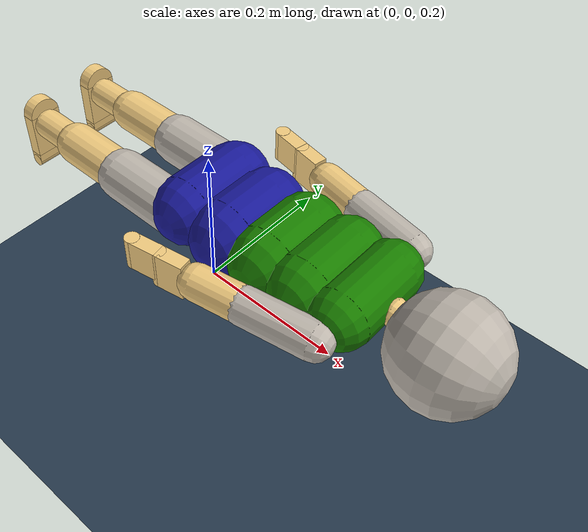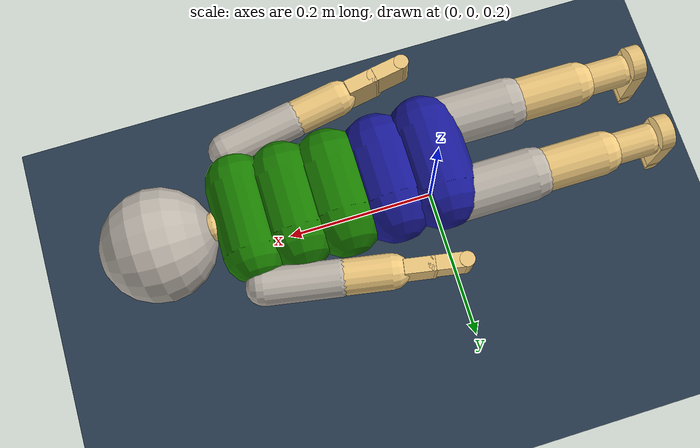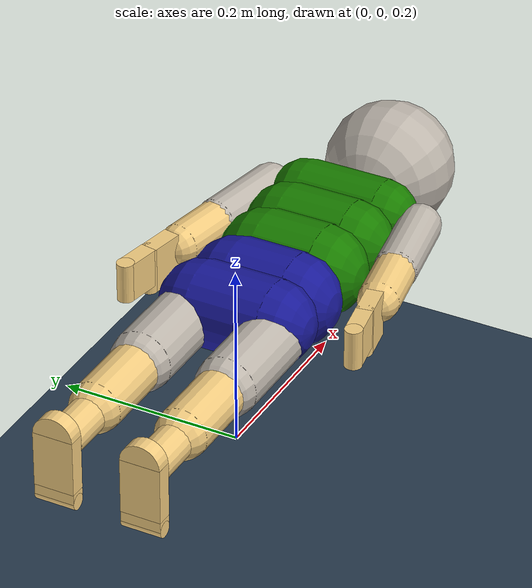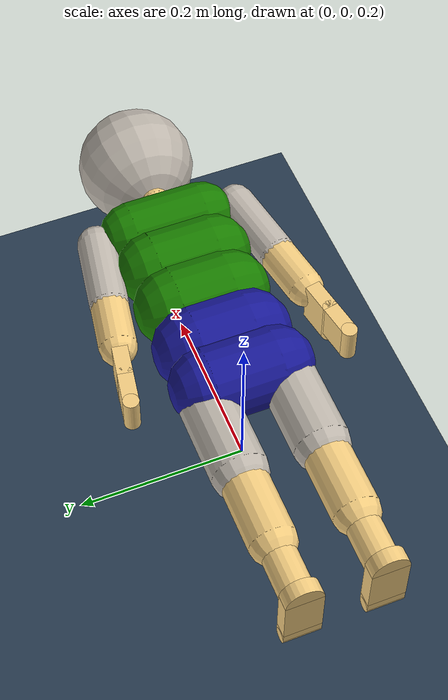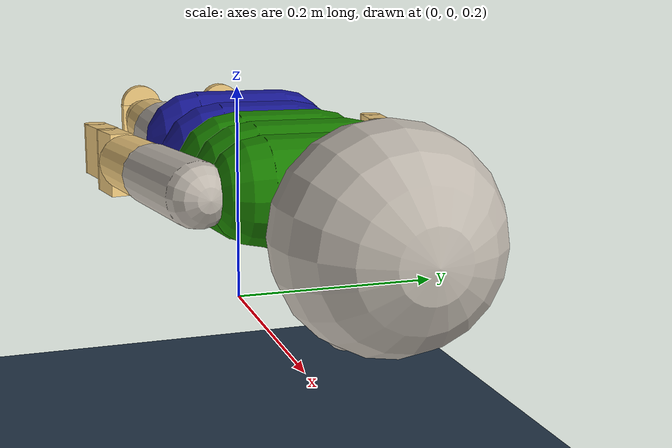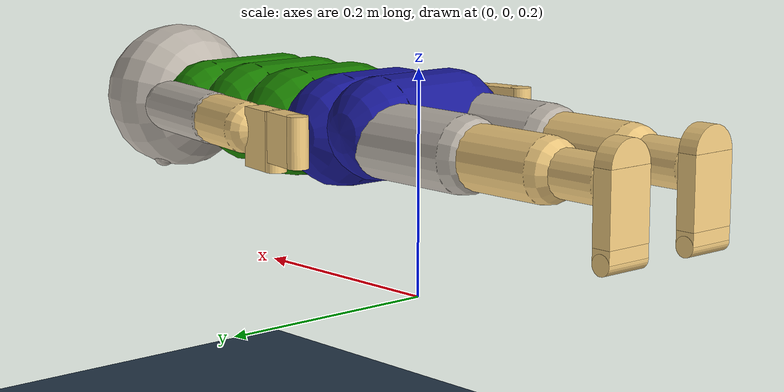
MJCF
<mujoco model="MIMo">

    <compiler inertiafromgeom="true" angle="degree"/>
    <option timestep="0.005" iterations="50" tolerance="1e-10" solver="Newton" jacobian="dense" cone="elliptic" impratio="1.0"/>
    <size nconmax="1000" njmax="5000" nstack="10000000" nuser_cam="3"/>

    <visual>
        <map force="0.1" zfar="30" znear="0.005"/>
        <rgba haze="0.15 0.25 0.35 1"/>
        <quality shadowsize="4096"/>
        <global offwidth="800" offheight="800"/>
    </visual>

    <asset>

        <texture type="skybox" builtin="gradient" rgb1="0.3 0.5 0.7" rgb2="0 0 0" width="512" height="512"/>

        <texture name="texplane" type="2d" builtin="checker" rgb1=".2 .3 .4" rgb2=".1 0.15 0.2" width="512" height="512" mark="cross" markrgb=".8 .8 .8"/>
        <material name="matplane" reflectance="0.3" texture="texplane" texrepeat="1 1" texuniform="true"/>

        <material name="orange" rgba="0.9 0.4 0 1" specular=".2" shininess=".8"/>

    </asset>

	<size nuser_actuator="3" />

	<default>
		<default class="mimo">
        	<joint limited="true" damping=".1" stiffness=".1" armature="0.001" solimplimit="0.98 0.99 0.001 .5 1" solreflimit="0.02 1" />
        	<geom condim="3" material="skin" friction="1 0.005 0.0002" solimp="0.95 0.99 0.001 0.5 1" solref="0.005 1" />
        	<motor ctrlrange="-1 1" ctrllimited="true" forcelimited="true" />
		</default>
    </default>

    <asset>

		<texture name="tex_head_default" type="cube" fileright="tex/head_front.png" fileleft="tex/head_back.png" fileup="tex/head_left.png" filedown="tex/head_right.png" filefront="tex/head_top.png" rgb1="0.95 .8 .5" />
		<texture name="tex_head_happy" type="cube" fileright="tex/head_front_happy.png" fileleft="tex/head_back.png" fileup="tex/head_left.png" filedown="tex/head_right.png" filefront="tex/head_top.png" rgb1="0.95 .8 .5" />
		<texture name="tex_head_sad" type="cube" fileright="tex/head_front_sad.png" fileleft="tex/head_back.png" fileup="tex/head_left.png" filedown="tex/head_right.png" filefront="tex/head_top.png" rgb1="0.95 .8 .5" />
		<texture name="tex_head_surprised" type="cube" fileright="tex/head_front_surprised.png" fileleft="tex/head_back.png" fileup="tex/head_left.png" filedown="tex/head_right.png" filefront="tex/head_top.png" rgb1="0.95 .8 .5" />
		<texture name="tex_head_angry" type="cube" fileright="tex/head_front_angry.png" fileleft="tex/head_back.png" fileup="tex/head_left.png" filedown="tex/head_right.png" filefront="tex/head_top.png" rgb1="0.95 .8 .5" />
		<texture name="tex_head_disgusted" type="cube" fileright="tex/head_front_disgusted.png" fileleft="tex/head_back.png" fileup="tex/head_left.png" filedown="tex/head_right.png" filefront="tex/head_top.png" rgb1="0.95 .8 .5" />
		<texture name="tex_head_scared" type="cube" fileright="tex/head_front_scared.png" fileleft="tex/head_back.png" fileup="tex/head_left.png" filedown="tex/head_right.png" filefront="tex/head_top.png" rgb1="0.95 .8 .5" />
		<texture name="tex_top_sleeve" type="cube" fileright="tex/sleeve_right.png" fileleft="tex/sleeve_left.png" fileup="tex/sleeve_up.png" filedown="tex/sleeve_down.png" filefront="tex/sleeve_front.png" fileback="tex/sleeve_back.png" rgb1="0.95 .8 .5" />
		<texture name="tex_pants_leg" type="cube" fileright="tex/leg_right.png" fileleft="tex/leg_left.png" fileup="tex/leg_up.png" filedown="tex/leg_down.png" filefront="tex/leg_front.png" fileback="tex/leg_back.png" rgb1="0.95 .8 .5" />
		<texture name="tex_eye_left" type="cube" fileright="tex/eye_pupil_left.png" rgb1="1 1 1" />
		<texture name="tex_eye_right" type="cube" fileright="tex/eye_pupil_right.png" rgb1="1 1 1" />

		<material name="skin" rgba="0.95 0.8 0.5 1" specular=".15" shininess=".7" />
		<material name="buttons" rgba=".05 .05 .05 1" specular=".9" shininess=".9" />
		<material name="head" texture="tex_head_default" texuniform="true" specular=".0" shininess=".0" />
		<material name="top_up" rgba=".1 .5 0.0 1" specular=".0" shininess=".0" />
		<material name="top_middle" rgba=".1 .5 0.0 1" specular=".0" shininess=".0" />
		<material name="top_down" rgba=".1 .5 0.0 1" specular=".0" shininess=".0" />
		<material name="top_sleeve" texture="tex_top_sleeve" texuniform="true" specular=".0" shininess=".0" />
		<material name="pants_up" rgba="0.1 0.1 0.6 1" specular=".0" shininess=".0" />
		<material name="pants_down" rgba="0.1 0.1 0.6 1" specular=".0" shininess=".0" />
		<material name="pants_leg" texture="tex_pants_leg" texuniform="true" specular=".0" shininess=".0" />
		<material name="eye_left" texture="tex_eye_left" texuniform="true" specular=".0" shininess=".0" />
		<material name="eye_right" texture="tex_eye_right" texuniform="true" specular=".0" shininess=".0" />

    </asset>

	<contact>
		<pair geom1="lb" geom2="ub1" condim="1" />
		<exclude body1="left_eye" body2="upper_body" />
		<exclude body1="right_eye" body2="upper_body" />
	</contact>

	<tendon>
		<fixed class="mimo" name="hip_bend" limited="true" range="-.01 .01">
			<joint joint="robot:hip_bend1" coef="1" />
			<joint joint="robot:hip_bend2" coef="-1" />
		</fixed>
		<fixed class="mimo" name="hip_rotation" limited="true" range="-.01 .01">
			<joint joint="robot:hip_rot1" coef="1" />
			<joint joint="robot:hip_rot2" coef="-1" />
		</fixed>
		<fixed class="mimo" name="hip_lean" limited="true" range="-.01 .01">
			<joint joint="robot:hip_lean1" coef="1" />
			<joint joint="robot:hip_lean2" coef="-.5" />
		</fixed>
		<fixed class="mimo" name="head_limits1" limited="true" range="-2.1 2.1">
			<joint joint="robot:head_swivel" coef="1" />
			<joint joint="robot:head_tilt_side" coef="1" />
		</fixed>
		<fixed class="mimo" name="head_limits2" limited="true" range="-2.1 2.1">
			<joint joint="robot:head_tilt" coef="1" />
			<joint joint="robot:head_tilt_side" coef="1" />
		</fixed>
		<fixed class="mimo" name="head_limits3" limited="true" range="-2.1 2.1">
			<joint joint="robot:head_swivel" coef="1" />
			<joint joint="robot:head_tilt" coef="1" />
		</fixed>
		<fixed class="mimo" name="head_limits1_sym" limited="true" range="-2.1 2.1">
			<joint joint="robot:head_swivel" coef="1" />
			<joint joint="robot:head_tilt_side" coef="-1" />
		</fixed>
		<fixed class="mimo" name="head_limits2_sym" limited="true" range="-2.1 2.1">
			<joint joint="robot:head_tilt" coef="1" />
			<joint joint="robot:head_tilt_side" coef="-1" />
		</fixed>
		<fixed class="mimo" name="head_limits3_sym" limited="true" range="-2.1 2.1">
			<joint joint="robot:head_swivel" coef="1" />
			<joint joint="robot:head_tilt" coef="-1" />
		</fixed>
	</tendon>

	<sensor>
		<accelerometer name="vestibular_acc" site="vestibular" />
		<gyro name="vestibular_gyro" site="vestibular" />

		<torque name="proprio:neck" site="torque_neck" />
		<torque name="proprio:left_eye" site="torque_left_eye" />
		<torque name="proprio:right_eye" site="torque_right_eye" />

		<torque name="proprio:chest" site="torque_chest" />
		<torque name="proprio:trunk_upper" site="torque_ub" />
		<torque name="proprio:trunk_lower" site="torque_lb" />

		<torque name="proprio:right_shoulder" site="torque_right_shoulder" />
		<torque name="proprio:right_elbow" site="torque_right_elbow" />
		<torque name="proprio:right_wrist" site="torque_right_wrist" />
		<torque name="proprio:right_fingers" site="torque_right_fingers" />

		<torque name="proprio:left_shoulder" site="torque_left_shoulder" />
		<torque name="proprio:left_elbow" site="torque_left_elbow" />
		<torque name="proprio:left_wrist" site="torque_left_wrist" />
		<torque name="proprio:left_fingers" site="torque_left_fingers" />

		<torque name="proprio:right_hip" site="torque_right_hip" />
		<torque name="proprio:right_knee" site="torque_right_knee" />
		<torque name="proprio:right_ankle" site="torque_right_ankle" />
		<torque name="proprio:right_toes" site="torque_right_toes" />

		<torque name="proprio:left_hip" site="torque_left_hip" />
		<torque name="proprio:left_knee" site="torque_left_knee" />
		<torque name="proprio:left_ankle" site="torque_left_ankle" />
		<torque name="proprio:left_toes" site="torque_left_toes" />

		<framelinvel name="kobayashi:left_wrist" objtype="site" objname="KOBAYASHI_LWrist" />
		<framelinvel name="kobayashi:right_wrist" objtype="site" objname="KOBAYASHI_RWrist" />
		<framelinvel name="kobayashi:left_ankle" objtype="site" objname="KOBAYASHI_LAnkle" />
		<framelinvel name="kobayashi:right_ankle" objtype="site" objname="KOBAYASHI_RAnkle" />
		<framelinvel name="kobayashi:torso" objtype="site" objname="KOBAYASHI_Torso" />
	</sensor>

  <actuator>
		<motor class="mimo" name="act:hip_bend" joint="robot:hip_bend1" gear="8.651900043426334" forcerange="-1 .765" user=".8574 32.93 22.97" />
		<motor class="mimo" name="act:hip_twist" joint="robot:hip_rot1" gear="2.968468540419432" forcerange="-1 1" user="1.699 8.136 8.136" />
		<motor class="mimo" name="act:hip_lean" joint="robot:hip_lean1" gear="5.928759481553962" forcerange="-1 1" user="1.278 1.264 1.264" />

		<motor class="mimo" name="act:chest_twist" joint="robot:chest_rot" gear="0.29439357425647267" forcerange="-1 1" user="1.699 8.136 8.136" />
		<motor class="mimo" name="act:chest_lean" joint="robot:chest_lean" gear="0.5887871485129453" forcerange="-1 1" user="1.278 1.264 1.264" />

		<motor class="mimo" name="act:head_swivel" joint="robot:head_swivel" gear="1.5587124735773776" forcerange="-1 1" user=".6665 24.87 24.87" />
		<motor class="mimo" name="act:head_tilt" joint="robot:head_tilt" gear="2.8576395348918586" forcerange="-1 .55" user=".9338 31.39 16.86" />
		<motor class="mimo" name="act:head_tilt_side" joint="robot:head_tilt_side" gear="1.5587124735773776" forcerange="-1 1" user="1.068 15.69 15.69" />

		<motor class="mimo" name="act:left_eye_horizontal" joint="robot:left_eye_horizontal" gear="0.004676137420732134" forcerange="-1 1" user="5.110 .03025 .03025" />
		<motor class="mimo" name="act:left_eye_vertical" joint="robot:left_eye_vertical" gear="0.004676137420732134" forcerange="-1 1" user="6.179 .02619 .02771" />
		<motor class="mimo" name="act:left_eye_torsional" joint="robot:left_eye_torsional" gear="0.003204020084575721" forcerange="-1 1" user="25.03 .003686 .003686" />
		<motor class="mimo" name="act:right_eye_horizontal" joint="robot:right_eye_horizontal" gear="0.004676137420732134" forcerange="-1 1" user="5.110 .03025 .03025" />
		<motor class="mimo" name="act:right_eye_vertical" joint="robot:right_eye_vertical" gear="0.004676137420732134" forcerange="-1 1" user="6.179 .02619 .02771" />
		<motor class="mimo" name="act:right_eye_torsional" joint="robot:right_eye_torsional" gear="0.003204020084575721" forcerange="-1 1" user="25.03 .003686 .003686" />

		<motor class="mimo" name="act:right_shoulder_horizontal" joint="robot:right_shoulder_horizontal" gear="1.4366838952521321" forcerange="-1 1" user="1.811 18.80 15.30" />
		<motor class="mimo" name="act:right_shoulder_abduction" joint="robot:right_shoulder_ad_ab" gear="3.1926308783380715" forcerange="-.6875 1" user=".8793 44.17 69.23" />
		<motor class="mimo" name="act:right_shoulder_internal" joint="robot:right_shoulder_rotation" gear="1.9953942989612947" forcerange="-1 .64" user="1.498 25.09 17.10" />
		<motor class="mimo" name="act:right_elbow" joint="robot:right_elbow" gear="2.875453468776492" forcerange="-1 .83" user="1.566 35.43 27.04" />
		<motor class="mimo" name="act:right_wrist_rotation" joint="robot:right_hand1" gear="0.5237004435152449" forcerange="-1 1" user="1.513 7.842 7.842" />
		<motor class="mimo" name="act:right_wrist_flexion" joint="robot:right_hand2" gear="0.9276979285127197" forcerange="-1 .57" user="1.455 13.66 7.874" />
		<motor class="mimo" name="act:right_wrist_ulnar" joint="robot:right_hand3" gear="0.7107363161992609" forcerange="-.87 1" user="2.254 5.155 6.021" />
		<motor class="mimo" name="act:right_fingers" joint="robot:right_fingers" gear="0.5162190086078843" forcerange="-1 .33" user="3.019 6.854 2.551" />

		<motor class="mimo" name="act:left_shoulder_horizontal" joint="robot:left_shoulder_horizontal" gear="1.4366838952521321" forcerange="-1 1" user="1.811 18.80 15.30" />
		<motor class="mimo" name="act:left_shoulder_abduction" joint="robot:left_shoulder_ad_ab" gear="3.1926308783380715" forcerange="-.6875 1" user=".8793 44.17 69.23" />
		<motor class="mimo" name="act:left_shoulder_internal" joint="robot:left_shoulder_rotation" gear="1.9953942989612947" forcerange="-1 .64" user="1.498 25.09 17.10" />
		<motor class="mimo" name="act:left_elbow" joint="robot:left_elbow" gear="2.875453468776492" forcerange="-1 .83" user="1.566 35.43 27.04" />
		<motor class="mimo" name="act:left_wrist_rotation" joint="robot:left_hand1" gear="0.5237004435152449" forcerange="-1 1" user="1.513 7.842 7.842" />
		<motor class="mimo" name="act:left_wrist_flexion" joint="robot:left_hand2" gear="0.9276979285127197" forcerange="-1 .57" user="1.455 13.66 7.874" />
		<motor class="mimo" name="act:left_wrist_ulnar" joint="robot:left_hand3" gear="0.7107363161992609" forcerange="-.87 1" user="2.254 5.155 6.021" />
		<motor class="mimo" name="act:left_fingers" joint="robot:left_fingers" gear="0.5162190086078843" forcerange="-1 .33" user="3.019 6.854 2.551" />

		<motor class="mimo" name="act:right_hip_flex" joint="robot:right_hip1" gear="5.1696538389216276" forcerange="-1 1" user="1.083 71.25 92.49" />
		<motor class="mimo" name="act:right_hip_abduction" joint="robot:right_hip2" gear="4.03232999435887" forcerange="-1 1" user="1.488 24.81 29.20" />
		<motor class="mimo" name="act:right_hip_rotation" joint="robot:right_hip3" gear="2.28757182372282" forcerange="-.75 1" user="1.860 12.32 15.78" />
		<motor class="mimo" name="act:right_knee" joint="robot:right_knee" gear="7.8980335830264385" forcerange="-.65 1" user="1.450 63.16 89.27" />
		<motor class="mimo" name="act:right_foot_flexion" joint="robot:right_foot1" gear="2.459374425757823" forcerange="-1 .5" user="1.430 21.34 11.87" />
		<motor class="mimo" name="act:right_foot_inversion" joint="robot:right_foot2" gear="0.7547286597563689" forcerange="-.91 1" user="1.988 4.184 4.645" />
		<motor class="mimo" name="act:right_foot_rotation" joint="robot:right_foot3" gear="0.7807537859548644" forcerange="-1 1" user="2.688 3.868 3.625" />
		<motor class="mimo" name="act:right_toes" joint="robot:right_toes" gear="0.21470729113758774" forcerange="-1 .3" user="1.290 2.947 .8440" />

		<motor class="mimo" name="act:left_hip_flex" joint="robot:left_hip1" gear="5.1696538389216276" forcerange="-1 1" user="1.083 71.25 92.49" />
		<motor class="mimo" name="act:left_hip_abduction" joint="robot:left_hip2" gear="4.03232999435887" forcerange="-1 1" user="1.488 24.81 29.20" />
		<motor class="mimo" name="act:left_hip_rotation" joint="robot:left_hip3" gear="2.28757182372282" forcerange="-.75 1" user="1.860 12.32 15.78" />
		<motor class="mimo" name="act:left_knee" joint="robot:left_knee" gear="7.8980335830264385" forcerange="-.65 1" user="1.450 63.16 89.27" />
		<motor class="mimo" name="act:left_foot_flexion" joint="robot:left_foot1" gear="2.459374425757823" forcerange="-1 .5" user="1.430 21.34 11.87" />
		<motor class="mimo" name="act:left_foot_inversion" joint="robot:left_foot2" gear="0.7547286597563689" forcerange="-.91 1" user="1.988 4.184 4.645" />
		<motor class="mimo" name="act:left_foot_rotation" joint="robot:left_foot3" gear="0.7807537859548644" forcerange="-1 1" user="2.688 3.868 3.625" />
		<motor class="mimo" name="act:left_toes" joint="robot:left_toes" gear="0.21470729113758774" forcerange="-1 .3" user="1.290 2.947 .8440" />
	</actuator>

	<equality>
		<joint name="robot:hip_lean1" joint1="robot:hip_lean1" active="false" polycoef="0 1 0 0 0" />
		<joint name="robot:hip_rot1" joint1="robot:hip_rot1" active="false" polycoef="0 1 0 0 0" />
		<joint name="robot:hip_bend1" joint1="robot:hip_bend1" active="false" polycoef="0 1 0 0 0" />
		<joint name="robot:hip_lean2" joint1="robot:hip_lean2" active="false" polycoef="0 1 0 0 0" />
		<joint name="robot:hip_rot2" joint1="robot:hip_rot2" active="false" polycoef="0 1 0 0 0" />
		<joint name="robot:hip_bend2" joint1="robot:hip_bend2" active="false" polycoef="0 1 0 0 0" />
		<joint name="robot:head_swivel" joint1="robot:head_swivel" active="false" polycoef="0 1 0 0 0" />
		<joint name="robot:head_tilt" joint1="robot:head_tilt" active="false" polycoef="0 1 0 0 0" />
		<joint name="robot:head_tilt_side" joint1="robot:head_tilt_side" active="false" polycoef="0 1 0 0 0" />
		<joint name="robot:left_eye_horizontal" joint1="robot:left_eye_horizontal" active="false" polycoef="0 1 0 0 0" />
		<joint name="robot:left_eye_vertical" joint1="robot:left_eye_vertical" active="false" polycoef="0 1 0 0 0" />
		<joint name="robot:left_eye_torsional" joint1="robot:left_eye_torsional" active="false" polycoef="0 1 0 0 0" />
		<joint name="robot:right_eye_horizontal" joint1="robot:right_eye_horizontal" active="false" polycoef="0 1 0 0 0" />
		<joint name="robot:right_eye_vertical" joint1="robot:right_eye_vertical" active="false" polycoef="0 1 0 0 0" />
		<joint name="robot:right_eye_torsional" joint1="robot:right_eye_torsional" active="false" polycoef="0 1 0 0 0" />
		<joint name="robot:right_shoulder_horizontal" joint1="robot:right_shoulder_horizontal" active="false" polycoef="0 1 0 0 0" />
		<joint name="robot:right_shoulder_ad_ab" joint1="robot:right_shoulder_ad_ab" active="false" polycoef="0 1 0 0 0" />
		<joint name="robot:right_shoulder_rotation" joint1="robot:right_shoulder_rotation" active="false" polycoef="0 1 0 0 0" />
		<joint name="robot:right_elbow" joint1="robot:right_elbow" active="false" polycoef="0 1 0 0 0" />
		<joint name="robot:right_hand1" joint1="robot:right_hand1" active="false" polycoef="0 1 0 0 0" />
		<joint name="robot:right_hand2" joint1="robot:right_hand2" active="false" polycoef="0 1 0 0 0" />
		<joint name="robot:right_hand3" joint1="robot:right_hand3" active="false" polycoef="0 1 0 0 0" />
		<joint name="robot:right_fingers" joint1="robot:right_fingers" active="false" polycoef="0 1 0 0 0" />
		<joint name="robot:left_shoulder_horizontal" joint1="robot:left_shoulder_horizontal" active="false" polycoef="0 1 0 0 0" />
		<joint name="robot:left_shoulder_ad_ab" joint1="robot:left_shoulder_ad_ab" active="false" polycoef="0 1 0 0 0" />
		<joint name="robot:left_shoulder_rotation" joint1="robot:left_shoulder_rotation" active="false" polycoef="0 1 0 0 0" />
		<joint name="robot:left_elbow" joint1="robot:left_elbow" active="false" polycoef="0 1 0 0 0" />
		<joint name="robot:left_hand1" joint1="robot:left_hand1" active="false" polycoef="0 1 0 0 0" />
		<joint name="robot:left_hand2" joint1="robot:left_hand2" active="false" polycoef="0 1 0 0 0" />
		<joint name="robot:left_hand3" joint1="robot:left_hand3" active="false" polycoef="0 1 0 0 0" />
		<joint name="robot:left_fingers" joint1="robot:left_fingers" active="false" polycoef="0 1 0 0 0" />
		<joint name="robot:right_hip1" joint1="robot:right_hip1" active="false" polycoef="0 1 0 0 0" />
		<joint name="robot:right_hip2" joint1="robot:right_hip2" active="false" polycoef="0 1 0 0 0" />
		<joint name="robot:right_hip3" joint1="robot:right_hip3" active="false" polycoef="0 1 0 0 0" />
		<joint name="robot:right_knee" joint1="robot:right_knee" active="false" polycoef="0 1 0 0 0" />
		<joint name="robot:right_foot1" joint1="robot:right_foot1" active="false" polycoef="0 1 0 0 0" />
		<joint name="robot:right_foot2" joint1="robot:right_foot2" active="false" polycoef="0 1 0 0 0" />
		<joint name="robot:right_foot3" joint1="robot:right_foot3" active="false" polycoef="0 1 0 0 0" />
		<joint name="robot:right_toes" joint1="robot:right_toes" active="false" polycoef="0 1 0 0 0" />
		<joint name="robot:left_hip1" joint1="robot:left_hip1" active="false" polycoef="0 1 0 0 0" />
		<joint name="robot:left_hip2" joint1="robot:left_hip2" active="false" polycoef="0 1 0 0 0" />
		<joint name="robot:left_hip3" joint1="robot:left_hip3" active="false" polycoef="0 1 0 0 0" />
		<joint name="robot:left_knee" joint1="robot:left_knee" active="false" polycoef="0 1 0 0 0" />
		<joint name="robot:left_foot1" joint1="robot:left_foot1" active="false" polycoef="0 1 0 0 0" />
		<joint name="robot:left_foot2" joint1="robot:left_foot2" active="false" polycoef="0 1 0 0 0" />
		<joint name="robot:left_foot3" joint1="robot:left_foot3" active="false" polycoef="0 1 0 0 0" />
		<joint name="robot:left_toes" joint1="robot:left_toes" active="false" polycoef="0 1 0 0 0" />
	</equality>

    <equality>
        <weld body1="left_eye" body2="head"/>
        <weld body1="right_eye" body2="head"/>
    </equality>

    <worldbody>

        <geom name="floor" pos="0 0 0" size="0 0 .25" type="plane" material="matplane" condim="3"/>

        <light directional="false" diffuse=".4 .4 .4" specular="0 0 0" pos="0 0 10" dir="0 0 -1" castshadow="false"/>
        <light mode="targetbodycom" target="upper_body" directional="false" diffuse=".75 .75 .75" specular="0.3 0.3 0.3" pos="3 0 5" dir="0 0 -1"/>

        <body name="mimo_location" pos="0 0 0.35" euler="0 90 0">
            <freejoint name="mimo_location"/>

	<body childclass="mimo" name="hip" pos="0 0 0">

		<geom name="lb" type="capsule" size="0.04488657955622178 0.040210894185782005 0.0" mass="0.9472931011630498" material="pants_down" pos="-0.002 0.0 0.004675685370439769" euler="90 0 0" />
		<site name="lowerBody_center" type="sphere" size=".01 .01 .01" pos="0 0 0" />
		<site name="BODY_25:MidHip" type="sphere" size=".005" pos="0.005 0.0 -0.007" rgba="0 0 0 1" />
		<body name="lower_body" pos="0.002 0.0 0.07107041763068447">
			<joint name="robot:hip_lean1" type="hinge" pos="0.0 0.0 -0.04956226492666155" axis="1 0 0" range="-14 14" stiffness="3.38" damping="0.77" frictionloss=".049" armature="0.01" />
			<joint name="robot:hip_rot1" type="hinge" pos="0.0 0.0 -0.04956226492666155" axis="0 0 1" range="-18 18" stiffness="1.45" damping="0.29" frictionloss=".018" armature="0.01" />
			<joint name="robot:hip_bend1" type="hinge" pos="0.0 0.0 -0.04956226492666155" axis="0 1 0" range="-17 30.5" stiffness="2.20" damping="0.84" frictionloss="0.040" armature="0.01" />
			<site name="torque_lb" type="sphere" size="0.01" pos="0 0 0" group="4" />
			<geom name="cb" type="capsule" size="0.04956226492666155 0.03272979759307838 0.0" mass="1.0831230252852722" material="pants_up" contype="0" pos="0.005 0.0 -0.00748109659270363" euler="90 0 0" />

			<body name="upper_body" pos="-0.002 0.0 0.08509747374200378">

				<site name="KOBAYASHI_Torso" type="sphere" size="0.01" pos=".052 0 0.05" rgba="1 0 0 0" />
				<joint name="robot:hip_lean2" type="hinge" pos="0.0 0.0 -0.048627127852573594" axis="1 0 0" range="-27 27" stiffness="1.69" damping="0.38" frictionloss=".024" armature="0.01" />
				<joint name="robot:hip_rot2" type="hinge" pos="0.0 0.0 -0.048627127852573594" axis="0 0 1" range="-18 18" stiffness="1.45" damping="0.29" frictionloss=".018" armature="0.01" />
				<joint name="robot:hip_bend2" type="hinge" pos="0.0 0.0 -0.048627127852573594" axis="0 1 0" range="-17 30.5" stiffness="2.20" damping="0.84" frictionloss="0.040" armature="0.01" />
				<site name="torque_ub" type="sphere" size="0.01" pos="0 0 0" group="4" />
				<geom name="ub1" type="capsule" size="0.048627127852573594 0.032729797593078376 0.0" mass="0.8898863541830375" material="top_down" pos="0.007 0.0 -0.029924386370814522" euler="90 0 0" />
				<geom name="ub2" type="capsule" size="0.04488657955622179 0.036470345889430184 0.0" mass="0.7767901560728427" material="top_middle" pos="0.004 0.0 0.028054112222638615" euler="90 0 0" />
				<geom name="neck" type="capsule" size="0.017514262304045992 1e-06 0.0" mass="0.0" material="skin" pos="0.0 0.0 0.12250395670552193" euler="0 0 0" />

				<body name="chest" pos="0.0 0.0 0.08416233666791582">
					<site name="BODY_25:Neck" type="sphere" size=".005 .005 .005" pos="0.0 0.0 0.0" rgba="0 0 0 1" />
					<joint name="robot:chest_lean" type="hinge" pos="0 0 0" axis="1 0 0" range="-9 9" stiffness="1.69" damping="0.38" frictionloss=".024" armature="0.01" />
					<joint name="robot:chest_rot" type="hinge" pos="0 0 0" axis="0 0 1" range="-18 18" stiffness="1.45" damping="0.29" frictionloss=".018" armature="0.01" />
					<site name="torque_chest" type="sphere" size="0.01" pos="0 0 0" group="4" />
					<geom name="ub3" type="capsule" size="0.038340620037606105 0.043951442482133826 0.0" mass="0.5901773403913786" material="top_up" pos="0 0 0" euler="90 0 0" />

					<body name="right_upper_arm" pos="0.0 -0.08804175278458434 0.0" euler="170 0 0">

						<site name="BODY_25:RShoulder" type="sphere" size=".005 .005 .005" pos="0.0 0.0 0.0" rgba="0 0 0 1" />
						<joint name="robot:right_shoulder_horizontal" type="hinge" pos="0 0 0" axis="0 1 -4" range="-28 118" stiffness=".09" damping=".05" frictionloss=".0009" armature="0.004" />
						<joint name="robot:right_shoulder_ad_ab" type="hinge" pos="0 0 0" axis="-1 0 0" range="-84 183" stiffness=".11" damping=".10" frictionloss=".0014" armature="0.004" />
						<joint name="robot:right_shoulder_rotation" type="hinge" pos="0 0 0" axis="0 0 -1" range="-99 67" stiffness=".12" damping=".07" frictionloss=".0008" armature="0.004" />
						<site name="torque_right_shoulder" type="sphere" size="0.01" pos="0 0 0" group="4" />
						<geom name="right_uarm1" type="capsule" material="top_sleeve" size="0.02299876105937767 0.04516138912255305 0.0" mass="0.21422553193648464" pos="0.0 0.0 0.04516138912255305" euler="0 0 0" />
						<body name="right_lower_arm" pos="0.0 -0.0 0.0903227782451061" euler="0 0 0">

							<site name="KOBAYASHI_RWrist" type="sphere" size=".01" pos="0 0.025 .07" rgba="1 0 0 0" />
							<site name="BODY_25:RElbow" type="sphere" size=".005 .005 .005" pos="0.0 0.0 0.0" rgba="0 0 0 1" />
							<joint name="robot:right_elbow" type="hinge" pos="0 0 0" axis="0 -1 0" springref="-20" range="-146 5" stiffness=".13" damping=".11" frictionloss=".030" armature="0.002" />
							<site name="torque_right_elbow" type="sphere" size="0.01" pos="0 0 0" group="4" />
							<geom name="right_larm" type="capsule" size="0.02217729673666811 0.03017455532278552 0.0" mass="0.14800597993452333" pos="0.0 0.0 0.03017455532278552" />
							<body name="right_hand" pos="0.0 -0.0 0.07401853033252377" euler="0 0 0">
								<site name="BODY_25:RWrist" type="sphere" size=".005 .005 .005" pos="0.0 0.0 0.0" />
								<joint name="robot:right_hand1" type="hinge" pos="0 0 0" axis="0 0 -1" springref="-20" range="-90 90" stiffness=".22" damping=".03" frictionloss=".007" armature="0.001" />
								<joint name="robot:right_hand2" type="hinge" pos="0 0 0" axis="-1 0 0" range="-92 86" stiffness=".33" damping=".11" frictionloss=".007" armature="0.001" />
								<joint name="robot:right_hand3" type="hinge" pos="0 0 0" axis="0 1 0" range="-53 48" stiffness=".38" damping=".11" frictionloss=".007" armature="0.001" />
								<site name="torque_right_wrist" type="sphere" size="0.01" pos="0 0 0" group="4" />
								<geom name="geom:right_hand1" type="box" size="0.02559171825750641 0.009135617851949086 0.018703254616249783" mass="0.03228239162526117" pos="0.004567808925974543 0.0 0.018703254616249783" />
								<geom name="geom:right_hand2" type="cylinder" size="0.009335617851949087 0.02559171825750641 0.0" mass="0.012353867806540873" pos="0.004567808925974543 0.0 0.037406509232499566" euler="0 90 0" />
								<body name="right_fingers" pos="0.0 -0.0 0.037406509232499566">
									<joint name="robot:right_fingers" type="hinge" pos="0 0 0" axis="-1 0 0" springref="-40" range="-160 8" stiffness=".017" damping=".018" frictionloss=".0023" armature="0.0001" />
									<site name="torque_right_fingers" type="sphere" size="0.01" pos="0 0 0" group="4" />
									<geom name="geom:right_fingers1" type="box" size="0.0214799796645262 0.009135617851949086 0.018613335122902426" mass="0.027040436331331342" pos="0.0 0.0 0.018613335122902426" friction="5 0.02 0.01" />
									<geom name="geom:right_fingers2" type="cylinder" size="0.009335617851949087 0.0216799796645262 0.0" mass="0.010446640913162622" pos="0.0 0.0 0.03722667024580485" euler="0 90 0" friction="5 0.02 0.01" />
								</body>
							</body>
						</body>
					</body>

					<body name="left_upper_arm" pos="0.0 0.08804175278458434 0.0" euler="-170 0 0">

						<site name="BODY_25:LShoulder" type="sphere" size=".005 .005 .005" pos="0.0 0.0 0.0" rgba="0 0 0 1" />
						<joint name="robot:left_shoulder_horizontal" type="hinge" pos="0 0 0" axis="0 1 4" range="-28 118" stiffness=".09" damping=".05" frictionloss=".0009" armature="0.004" />
						<joint name="robot:left_shoulder_ad_ab" type="hinge" pos="0 0 0" axis="1 0 0" range="-84 183" stiffness=".11" damping=".10" frictionloss=".0014" armature="0.004" />
						<joint name="robot:left_shoulder_rotation" type="hinge" pos="0 0 0" axis="0 0 1" range="-99 67" stiffness=".12" damping=".07" frictionloss=".0008" armature="0.004" />
						<site name="torque_left_shoulder" type="sphere" size="0.01" pos="0 0 0" group="4" />
						<geom name="left_uarm1" type="capsule" material="top_sleeve" size="0.02299876105937767 0.04516138912255305 0.0" mass="0.21422553193648464" pos="0.0 0.0 0.04516138912255305" euler="0 0 0" />
						<body name="left_lower_arm" pos="0.0 0.0 0.0903227782451061" euler="0 0 0">

							<site name="KOBAYASHI_LWrist" type="sphere" size=".01" pos="0 -0.025 .07" rgba="1 0 0 0" />
							<site name="BODY_25:LElbow" type="sphere" size=".005 .005 .005" pos="0.0 0.0 0.0" rgba="0 0 0 1" />
							<joint name="robot:left_elbow" type="hinge" pos="0 0 0" axis="0 -1 0" springref="-20" range="-146 5" stiffness=".13" damping=".11" frictionloss=".030" armature="0.002" />
							<site name="torque_left_elbow" type="sphere" size="0.01" pos="0 0 0" group="4" />
							<geom name="left_larm" type="capsule" size="0.02217729673666811 0.03017455532278552 0.0" mass="0.14800597993452333" pos="0.0 0.0 0.03017455532278552" />
							<body name="left_hand" pos="0.0 0.0 0.07401853033252377" euler="0 0 0">
								<site name="BODY_25:LWrist" type="sphere" size=".005 .005 .005" pos="0.0 0.0 0.0" rgba="0 0 0 1" />
								<joint name="robot:left_hand1" type="hinge" pos="0 0 0" axis="0 0 1" springref="-20" range="-90 90" stiffness=".22" damping=".03" frictionloss=".007" armature="0.001" />
								<joint name="robot:left_hand2" type="hinge" pos="0 0 0" axis="1 0 0" range="-92 86" stiffness=".33" damping=".11" frictionloss=".007" armature="0.001" />
								<joint name="robot:left_hand3" type="hinge" pos="0 0 0" axis="0 1 0" range="-53 48" stiffness=".38" damping=".11" frictionloss=".007" armature="0.001" />
								<site name="torque_left_wrist" type="sphere" size="0.01" pos="0 0 0" group="4" />
								<geom name="geom:left_hand1" type="box" size="0.02559171825750641 0.009135617851949086 0.018703254616249783" mass="0.03228239162526117" pos="0.004567808925974543 0.0 0.018703254616249783" />
								<geom name="geom:left_hand2" type="cylinder" size="0.009335617851949087 0.02559171825750641 0.0" mass="0.012353867806540873" pos="0.004567808925974543 0.0 0.037406509232499566" euler="0 90 0" />
								<body name="left_fingers" pos="0.0 0.0 0.037406509232499566">
									<joint name="robot:left_fingers" type="hinge" pos="0 0 0" axis="1 0 0" springref="-40" range="-160 8" stiffness=".017" damping=".018" frictionloss=".0023" armature="0.0001" />
									<site name="torque_left_fingers" type="sphere" size="0.01" pos="0 0 0" group="4" />
									<geom name="geom:left_fingers1" type="box" size="0.0214799796645262 0.009135617851949086 0.018613335122902426" mass="0.027040436331331342" pos="0.0 0.0 0.018613335122902426" friction="5 0.02 0.01" />
									<geom name="geom:left_fingers2" type="cylinder" size="0.009335617851949087 0.0216799796645262 0.0" mass="0.010446640913162622" pos="0.0 0.0 0.03722667024580485" euler="0 90 0" friction="5 0.02 0.01" />
								</body>
							</body>
						</body>
					</body>
				</body>
				<body name="head" pos="0.0 0.0 0.12250495670552193">
					<geom name="head" type="sphere" size="0.07005704921618397 0.0 0.0" mass="1.536890498947294" material="head" pos="0.009531571321929793 0.0 0.07005704921618397" />
					<site name="vestibular" type="sphere" size="0.01" pos="0.01 0.0 0.07005704921618397" group="4" />
					<site name="torque_neck" type="sphere" size="0.01" pos="0 0 0" group="4" />
					<joint name="robot:head_swivel" type="hinge" pos="0 0 0" axis="0 0 1" range="-111 111" stiffness=".23" damping=".29" frictionloss=".018" armature="0.005" />
					<joint name="robot:head_tilt" type="hinge" pos="0.0 0.0 0.011676174869363997" axis="0 1 0" range="-70 81" stiffness=".45" damping=".53" frictionloss=".018" armature="0.005" />
					<joint name="robot:head_tilt_side" type="hinge" pos="0.0 0.0 0.023352349738727993" axis="1 0 0" range="-70 70" stiffness=".37" damping=".29" frictionloss=".018" armature="0.005" />
					<body name="left_eye" pos="0.06672099925350855 0.023352349738727993 0.06421896178150198">
						<site name="BODY_25:LEye" type="sphere" size=".005 .005 .005" pos="0.0 0.0 0.0" rgba="0 0 0 1" />
						<site name="torque_left_eye" type="sphere" size="0.01" pos="0 0 0" group="4" />
						<joint name="robot:left_eye_horizontal" type="hinge" pos="0 0 0" axis="0 0 1" range="-45 45" stiffness=".00065" damping=".00042" frictionloss=".000054" armature=".0002" />
						<joint name="robot:left_eye_vertical" type="hinge" pos="0 0 0" axis="0 -1 0" range="-47 33" stiffness=".00065" damping=".00042" frictionloss=".000054" armature=".0002" />
						<joint name="robot:left_eye_torsional" type="hinge" pos="0 0 0" axis="-1 0 0" range="-8 8" stiffness=".00267" damping=".00042" frictionloss=".000037" armature=".0002" />
						<geom name="geom:left_eye1" type="sphere" material="eye_left" size="0.010723017737171017 0.0 0.0" mass="0.005433844873165582" pos="0 0 0" />
						<camera name="eye_left" mode="fixed" fovy="60" pos="0.01125 0 0" euler="90 -90 0" />
					</body>
					<body name="right_eye" pos="0.06672099925350855 -0.023352349738727993 0.06421896178150198">
						<site name="BODY_25:REye" type="sphere" size=".005 .005 .005" pos="0.0 0.0 0.0" rgba="0 0 0 1" />
						<site name="torque_right_eye" type="sphere" size="0.01" pos="0 0 0" group="4" />
						<joint name="robot:right_eye_horizontal" type="hinge" pos="0 0 0" axis="0 0 -1" range="-45 45" stiffness=".00065" damping=".00042" frictionloss=".000054" armature=".0002" />
						<joint name="robot:right_eye_vertical" type="hinge" pos="0 0 0" axis="0 -1 0" range="-47 33" stiffness=".00065" damping=".00042" frictionloss=".000054" armature=".0002" />
						<joint name="robot:right_eye_torsional" type="hinge" pos="0 0 0" axis="1 0 0" range="-8 8" stiffness=".00267" damping=".00042" frictionloss=".000037" armature=".0002" />
						<geom name="geom:right_eye1" type="sphere" material="eye_right" size="0.010723017737171017 0.0 0.0" mass="0.005433844873165582" pos="0 0 0" />
						<camera name="eye_right" mode="fixed" fovy="60" pos="0.01125 0 0" euler="90 -90 0" />
					</body>
					<site name="BODY_25:Nose" type="sphere" size=".005" pos="0.06529126355521908 0.0 0.0414623352503946" rgba="0 0 0 1" />
					<site name="BODY_25:LEar" type="sphere" size=".005" pos="0.01 0.059572320762061204 0.05480653510109631" rgba="0 0 0 1" />
					<site name="BODY_25:REar" type="sphere" size=".005" pos="0.01 -0.059572320762061204 0.05480653510109631" rgba="0 0 0 1" />
				</body>
			</body>
		</body>

		<body name="right_upper_leg" pos="0.005 -0.04769199077848564 -0.007">

			<joint name="robot:right_hip1" type="hinge" pos="0 0 0" axis="0 1 0" springref="-10" range="-133 20" stiffness="1.72" damping="1.27" frictionloss=".08" armature=".005" />
			<joint name="robot:right_hip2" type="hinge" pos="0 0 0" axis="1 0 0" range="-51 17" stiffness="3.51" damping="1.99" frictionloss=".062" armature=".005" />
			<joint name="robot:right_hip3" type="hinge" pos="0 0 0" axis="0 0 -1" range="-32 41" stiffness="2.16" damping="0.75" frictionloss=".027" armature=".005" />
			<site name="torque_right_hip" type="sphere" size="0.01" pos="0 0 0" group="4" />
			<site name="BODY_25:RHip" type="sphere" size=".005 .005 .005" pos="0.0 0.0 0.0" rgba="0 0 0 1" />
			<geom name="geom:right_upper_leg1" type="capsule" material="pants_leg" contype="2" conaffinity="3" size="0.0329285472589291 0.049165747592648294 0.0" mass="0.5168361425461897" pos="0.0 0.0 -0.05073905151561304" euler="0 0 0" />
			<body name="right_lower_leg" pos="0.0 -0.0 -0.1150228421105065">

				<site name="KOBAYASHI_RAnkle" type="sphere" size=".01" pos=".021 0 -.140" rgba="1 0 0 0" />
				<joint name="robot:right_knee" type="hinge" pos="0 0 0" axis="0 -1 0" springref="-30" range="-145 4" stiffness="1.63" damping="0.53" frictionloss=".065" armature=".003" />
				<site name="torque_right_knee" type="sphere" size="0.01" pos="0 0 0" group="4" />
				<site name="BODY_25:RKnee" type="sphere" size=".005 .005 .005" pos="0.0 0.0 0.0" rgba="0 0 0 1" />
				<geom name="geom:right_lower_leg1" type="capsule" size="0.027445554705839856 0.037550406396301673 0.0" mass="0.2638733020089133" pos="0.0 0.0 -0.037550406396301673" euler="0 0 0" />
				<geom name="geom:right_lower_leg2" type="capsule" size="0.019950858551775662 0.023895713161282885 0.0" mass="0.09272415009581338" pos="0.0 0.0 -0.11265121918890503" euler="0 0 0" />
				<body name="right_foot" pos="0.0 -0.0 -0.1502016255852067">
					<joint name="robot:right_foot1" type="hinge" pos="0.0 -0.0 0.012972552585572596" axis="0 -1 0" springref="-10" range="-63 32" stiffness="1.29" damping="0.6" frictionloss=".019" armature=".003" />
					<joint name="robot:right_foot2" type="hinge" pos="0.0 -0.0 0.012972552585572596" axis="1 0 0" range="-33 31" stiffness="0.96" damping="0.37" frictionloss=".011" armature=".0025" />
					<joint name="robot:right_foot3" type="hinge" pos="0.0 -0.0 0.012972552585572596" axis="0 0 1" range="-20 30" stiffness="1.15" damping="0.38" frictionloss=".012" armature=".002" />
					<site name="torque_right_ankle" type="sphere" size="0.01" pos="0 0 0" group="4" />
					<site name="BODY_25:RAnkle" type="sphere" size=".005" pos="0.0 0.0 0.012972552585572596" rgba="0 0 0 1" />
					<site name="BODY_25:RHeel" type="sphere" size=".005" pos="-0.03014017184526871 0.0 0.0" rgba="0 0 0 1" />
					<geom name="geom:right_foot1" type="cylinder" size="0.02174042076176882 0.008548368390381731 0.0" mass="0.021188792494672714" pos="-0.013778364272122838 0.0 0.0" euler="0 0 0" />
					<geom name="geom:right_foot2" type="box" size="0.03014017184526871 0.02184042076176882 0.00864836839038173" mass="0.03806174706529965" pos="0.016361807573145874 0.0 0.0" euler="0 0 0" friction="2 0.02 0.01" />
					<geom name="geom:right_foot3" type="cylinder" size="0.008548368390381731 0.021640420761768822 0.0" mass="0.008249532610412488" pos="0.04650197941841458 0.0 0.0" euler="90 0 0" friction="2 0.02 0.01" />
					<body name="right_toes" pos="0.04650197941841458 -0.0 0.0">
						<joint name="robot:right_toes" type="hinge" pos="0 0 0" axis="0 -1 0" range="-60 80" frictionloss=".005" armature=".0005" stiffness=".106" damping=".04" />
						<site name="torque_right_toes" type="sphere" size="0.01" pos="0 0 0" group="4" />
						<geom name="geom:right_toes1" type="box" size="0.006028034369053741 0.02174042076176882 0.008548368390381731" mass="0.007037584057613529" pos="0.006028034369053741 0.0 0.0" euler="0 0 0" friction="2 0.02 0.01" />
						<geom name="geom:right_toes2" type="cylinder" size="0.00864836839038173 0.02184042076176882 0.0" mass="0.008010872580318039" pos="0.012056068738107483 0.0 0.0" euler="90 0 0" friction="2 0.02 0.01" />
						<site name="BODY_25:RBigToe" type="sphere" size=".005" pos="0.00947262543708445 0.010483401965649033 0.0" rgba="0 0 0 1" />
						<site name="BODY_25:RSmallToe" type="sphere" size=".005" pos="0.008611477670076773 -0.010483401965649033 0.0" rgba="0 0 0 1" />
					</body>
				</body>
			</body>
		</body>

		<body name="left_upper_leg" pos="0.005 0.04769199077848564 -0.007">

			<site name="BODY_25:LHip" type="sphere" size=".005 .005 .005" pos="0.0 0.0 0.0" rgba="0 0 0 1" />
			<joint name="robot:left_hip1" type="hinge" pos="0 0 0" axis="0 1 0" springref="-10" range="-133 20" stiffness="1.72" damping="1.27" frictionloss=".08" armature=".005" />
			<joint name="robot:left_hip2" type="hinge" pos="0 0 0" axis="-1 0 0" range="-51 17" stiffness="3.51" damping="1.99" frictionloss=".062" armature=".005" />
			<joint name="robot:left_hip3" type="hinge" pos="0 0 0" axis="0 0 1" range="-32 41" stiffness="2.16" damping="0.75" frictionloss=".027" armature=".005" />
			<site name="torque_left_hip" type="sphere" size="0.01" pos="0 0 0" group="4" />
			<geom name="geom:left_upper_leg1" type="capsule" material="pants_leg" contype="2" conaffinity="3" size="0.0329285472589291 0.049165747592648294 0.0" mass="0.5168361425461897" pos="0.0 0.0 -0.05073905151561304" euler="0 0 0" />
			<body name="left_lower_leg" pos="0.0 0.0 -0.1150228421105065">

				<site name="KOBAYASHI_LAnkle" type="sphere" size=".01" pos=".021 0 -.140" rgba="1 0 0 0" />
				<joint name="robot:left_knee" type="hinge" pos="0 0 0" axis="0 -1 0" springref="-30" range="-145 4" stiffness="1.63" damping="0.53" frictionloss=".065" armature=".003" />
				<site name="torque_left_knee" type="sphere" size="0.01" pos="0 0 0" group="4" />
				<site name="BODY_25:LKnee" type="sphere" size=".005" pos="0.0 0.0 0.0" rgba="0 0 0 1" />
				<geom name="geom:left_lower_leg1" type="capsule" size="0.027445554705839856 0.037550406396301673 0.0" mass="0.2638733020089133" pos="0.0 0.0 -0.037550406396301673" euler="0 0 0" />
				<geom name="geom:left_lower_leg2" type="capsule" size="0.019950858551775662 0.023895713161282885 0.0" mass="0.09272415009581338" pos="0.0 0.0 -0.11265121918890503" euler="0 0 0" />
				<body name="left_foot" pos="0.0 0.0 -0.1502016255852067">
					<joint name="robot:left_foot1" type="hinge" pos="0.0 0.0 0.012972552585572596" axis="0 -1 0" springref="-10" range="-63 32" stiffness="1.29" damping="0.6" frictionloss=".019" armature=".003" />
					<joint name="robot:left_foot2" type="hinge" pos="0.0 0.0 0.012972552585572596" axis="-1 0 0" range="-33 31" stiffness="0.96" damping="0.37" frictionloss=".011" armature=".0025" />
					<joint name="robot:left_foot3" type="hinge" pos="0.0 0.0 0.012972552585572596" axis="0 0 -1" range="-20 30" stiffness="1.15" damping="0.38" frictionloss=".012" armature=".002" />
					<site name="torque_left_ankle" type="sphere" size="0.01" pos="0 0 0" group="4" />
					<site name="BODY_25:LAnkle" type="sphere" size=".005" pos="0.0 0.0 0.012972552585572596" rgba="0 0 0 1" />
					<site name="BODY_25:LHeel" type="sphere" size=".005" pos="-0.03014017184526871 0.0 0.0" rgba="0 0 0 1" />
					<geom name="geom:left_foot1" type="cylinder" size="0.02174042076176882 0.008548368390381731 0.0" mass="0.021188792494672714" pos="-0.013778364272122838 0.0 0.0" euler="0 0 0" />
					<geom name="geom:left_foot2" type="box" size="0.03014017184526871 0.02184042076176882 0.00864836839038173" mass="0.03806174706529965" pos="0.016361807573145874 0.0 0.0" euler="0 0 0" friction="2 0.02 0.01" />
					<geom name="geom:left_foot3" type="cylinder" size="0.008548368390381731 0.021640420761768822 0.0" mass="0.008249532610412488" pos="0.04650197941841458 0.0 0.0" euler="90 0 0" friction="2 0.02 0.01" />
					<body name="left_toes" pos="0.04650197941841458 0.0 0.0">
						<joint name="robot:left_toes" type="hinge" pos="0 0 0" axis="0 -1 0" range="-60 80" frictionloss=".005" armature=".0005" stiffness=".106" damping=".04" />
						<site name="torque_left_toes" type="sphere" size="0.01" pos="0 0 0" group="4" />
						<geom name="geom:left_toes1" type="box" size="0.006028034369053741 0.02174042076176882 0.008548368390381731" mass="0.007037584057613529" pos="0.006028034369053741 0.0 0.0" euler="0 0 0" friction="2 0.02 0.01" />
						<geom name="geom:left_toes2" type="cylinder" size="0.00864836839038173 0.02184042076176882 0.0" mass="0.008010872580318039" pos="0.012056068738107483 0.0 0.0" euler="90 0 0" friction="2 0.02 0.01" />
						<site name="BODY_25:LBigToe" type="sphere" size=".005" pos="0.00947262543708445 -0.010483401965649033 0.0" rgba="0 0 0 1" />
						<site name="BODY_25:LSmallToe" type="sphere" size=".005" pos="0.008611477670076773 0.010483401965649033 0.0" rgba="0 0 0 1" />
					</body>
				</body>
			</body>
		</body>

	</body>

        </body>

        <camera name="corner" pos="3 -3 3" fovy="20" mode="targetbody" target="mimo_location"/>
        <camera name="top" pos="0 0 2" euler="0 0 -90" mode="fixed"/>
        <camera name="side1" pos="2 0 .5" euler="90 90 0" mode="fixed"/>
        <camera name="side2" pos="0 2 .5" euler="90 180 0" mode="fixed"/>
        <camera name="closeup" pos="0.25 -0.25 1" mode="targetbody" target="mimo_location"/>

    </worldbody>

</mujoco>
